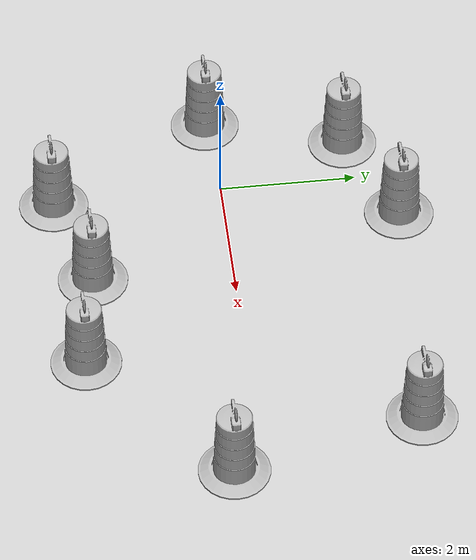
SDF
<sdf version="1.7">
 <world name="default">
  <light name="sun" type="directional">
   <pose>0 0 10 0 -0 0</pose>
   <diffuse>0.8 0.8 0.8 1</diffuse>
   <specular>0.2 0.2 0.2 1</specular>
   <attenuation>
    <range>1000</range>
    <constant>0.9</constant>
    <linear>0.01</linear>
    <quadratic>0.001</quadratic>
   </attenuation>
   <direction>-0.5 0.1 -0.9</direction>
   <spot><inner_angle>0</inner_angle><outer_angle>0</outer_angle><falloff>0</falloff></spot>
  </light>
  <model name="ground_plane">
   <static>1</static>
   <link name="link">
    <collision name="collision">
     <geometry><plane><normal>0 0 1</normal><size>100 100</size></plane></geometry>
     <surface><friction><ode><mu>100</mu><mu2>50</mu2></ode></friction></surface>
    </collision>
    <visual name="visual">
     <cast_shadows>0</cast_shadows>
     <geometry><plane><normal>0 0 1</normal><size>100 100</size></plane></geometry>
     <material>
      <script><uri>file://media/materials/scripts/gazebo.material</uri><name>Gazebo/Grey</name></script>
     </material>
    </visual>
   </link>
  </model>
  <gravity>0 0 -9.8</gravity>
  <magnetic_field>6e-06 2.3e-05 -4.2e-05</magnetic_field>
  <atmosphere type="adiabatic"/>
  <physics type="ode">
   <max_step_size>0.001</max_step_size>
   <real_time_factor>1</real_time_factor>
   <real_time_update_rate>1000</real_time_update_rate>
  </physics>
  <scene><ambient>0.4 0.4 0.4 1</ambient><background>0.7 0.7 0.7 1</background><shadows>1</shadows></scene>
  <spherical_coordinates>
   <surface_model>EARTH_WGS84</surface_model>
   <latitude_deg>0</latitude_deg>
   <longitude_deg>0</longitude_deg>
   <elevation>0</elevation>
   <heading_deg>0</heading_deg>
  </spherical_coordinates>
  <model name="Construction Barrel">
   <link name="link">
    <inertial>
     <pose>0 0 0.4 0 -0 0</pose>
     <mass>500</mass>
     <inertia><ixx>51.2096</ixx><iyy>51.2096</iyy><izz>25</izz><ixy>0</ixy><ixz>0</ixz><iyz>0</iyz></inertia>
    </inertial>
    <collision name="collision">
     <geometry><mesh><uri>model://construction_barrel/meshes/construction_barrel.dae</uri></mesh></geometry>
    </collision>
    <visual name="visual">
     <geometry><mesh><uri>model://construction_barrel/meshes/construction_barrel.dae</uri></mesh></geometry>
    </visual>
   </link>
   <pose>5.25198 -0.411585 -2e-06 -6e-06 -2e-06 -1e-05</pose>
  </model>
  <model name="Construction Barrel_0">
   <link name="link">
    <inertial>
     <pose>0 0 0.4 0 -0 0</pose>
     <mass>500</mass>
     <inertia><ixx>51.2096</ixx><iyy>51.2096</iyy><izz>25</izz><ixy>0</ixy><ixz>0</ixz><iyz>0</iyz></inertia>
    </inertial>
    <collision name="collision">
     <geometry><mesh><uri>model://construction_barrel/meshes/construction_barrel.dae</uri></mesh></geometry>
    </collision>
    <visual name="visual">
     <geometry><mesh><uri>model://construction_barrel/meshes/construction_barrel.dae</uri></mesh></geometry>
    </visual>
   </link>
   <pose>4.62098 2.31579 0 0 0 -1e-05</pose>
  </model>
  <model name="Construction Barrel_1">
   <link name="link">
    <inertial>
     <pose>0 0 0.4 0 -0 0</pose>
     <mass>500</mass>
     <inertia><ixx>51.2096</ixx><iyy>51.2096</iyy><izz>25</izz><ixy>0</ixy><ixz>0</ixz><iyz>0</iyz></inertia>
    </inertial>
    <collision name="collision">
     <geometry><mesh><uri>model://construction_barrel/meshes/construction_barrel.dae</uri></mesh></geometry>
    </collision>
    <visual name="visual">
     <geometry><mesh><uri>model://construction_barrel/meshes/construction_barrel.dae</uri></mesh></geometry>
    </visual>
   </link>
   <pose>3.08733 -2.28025 -2e-06 -3e-06 -3e-06 -9e-06</pose>
  </model>
  <model name="Construction Barrel_2">
   <link name="link">
    <inertial>
     <pose>0 0 0.4 0 -0 0</pose>
     <mass>500</mass>
     <inertia><ixx>51.2096</ixx><iyy>51.2096</iyy><izz>25</izz><ixy>0</ixy><ixz>0</ixz><iyz>0</iyz></inertia>
    </inertial>
    <collision name="collision">
     <geometry><mesh><uri>model://construction_barrel/meshes/construction_barrel.dae</uri></mesh></geometry>
    </collision>
    <visual name="visual">
     <geometry><mesh><uri>model://construction_barrel/meshes/construction_barrel.dae</uri></mesh></geometry>
    </visual>
   </link>
   <pose>0.783003 2.55177 -0 0 0 -7e-06</pose>
  </model>
  <model name="Construction Barrel_3">
   <link name="link">
    <inertial>
     <pose>0 0 0.4 0 -0 0</pose>
     <mass>500</mass>
     <inertia><ixx>51.2096</ixx><iyy>51.2096</iyy><izz>25</izz><ixy>0</ixy><ixz>0</ixz><iyz>0</iyz></inertia>
    </inertial>
    <collision name="collision">
     <geometry><mesh><uri>model://construction_barrel/meshes/construction_barrel.dae</uri></mesh></geometry>
    </collision>
    <visual name="visual">
     <geometry><mesh><uri>model://construction_barrel/meshes/construction_barrel.dae</uri></mesh></geometry>
    </visual>
   </link>
   <pose>0.050014 -2.48635 -3e-06 -9e-06 -4e-06 -6e-06</pose>
  </model>
  <model name="Construction Barrel_4">
   <link name="link">
    <inertial>
     <pose>0 0 0.4 0 -0 0</pose>
     <mass>500</mass>
     <inertia><ixx>51.2096</ixx><iyy>51.2096</iyy><izz>25</izz><ixy>0</ixy><ixz>0</ixz><iyz>0</iyz></inertia>
    </inertial>
    <collision name="collision">
     <geometry><mesh><uri>model://construction_barrel/meshes/construction_barrel.dae</uri></mesh></geometry>
    </collision>
    <visual name="visual">
     <geometry><mesh><uri>model://construction_barrel/meshes/construction_barrel.dae</uri></mesh></geometry>
    </visual>
   </link>
   <pose>-1.30031 -0.093001 0 0 -0 -5e-06</pose>
  </model>
  <model name="Construction Barrel_5">
   <link name="link">
    <inertial>
     <pose>0 0 0.4 0 -0 0</pose>
     <mass>500</mass>
     <inertia><ixx>51.2096</ixx><iyy>51.2096</iyy><izz>25</izz><ixy>0</ixy><ixz>0</ixz><iyz>0</iyz></inertia>
    </inertial>
    <collision name="collision">
     <geometry><mesh><uri>model://construction_barrel/meshes/construction_barrel.dae</uri></mesh></geometry>
    </collision>
    <visual name="visual">
     <geometry><mesh><uri>model://construction_barrel/meshes/construction_barrel.dae</uri></mesh></geometry>
    </visual>
   </link>
   <pose>-0.712484 1.91521 -1e-06 2e-06 -2e-06 -5e-06</pose>
  </model>
  <model name="Construction Barrel_6">
   <link name="link">
    <inertial>
     <pose>0 0 0.4 0 -0 0</pose>
     <mass>500</mass>
     <inertia><ixx>51.2096</ixx><iyy>51.2096</iyy><izz>25</izz><ixy>0</ixy><ixz>0</ixz><iyz>0</iyz></inertia>
    </inertial>
    <collision name="collision">
     <geometry><mesh><uri>model://construction_barrel/meshes/construction_barrel.dae</uri></mesh></geometry>
    </collision>
    <visual name="visual">
     <geometry><mesh><uri>model://construction_barrel/meshes/construction_barrel.dae</uri></mesh></geometry>
    </visual>
   </link>
   <pose>1.54999 -2.04163 -1e-06 3e-06 -2e-06 -2e-06</pose>
  </model>
 </world>
</sdf>
